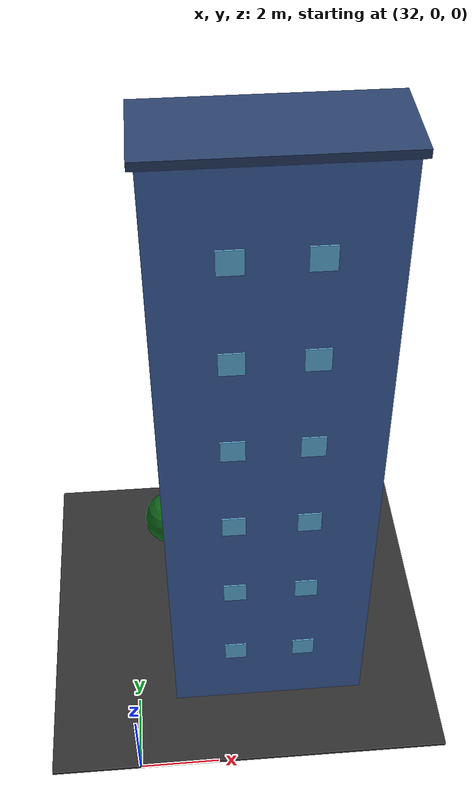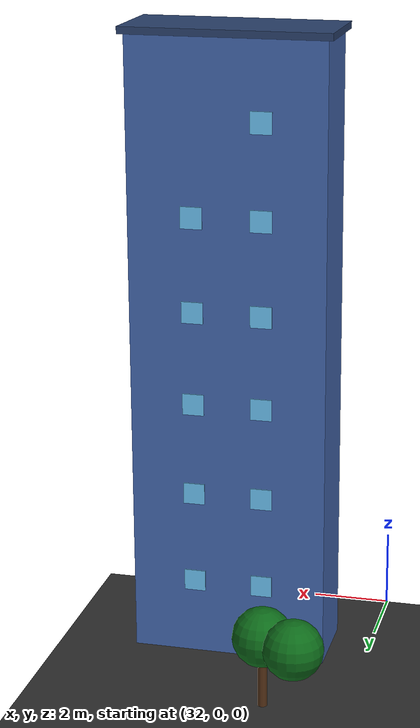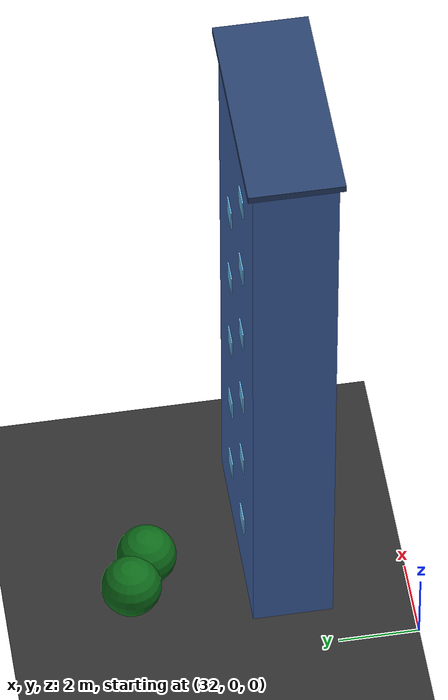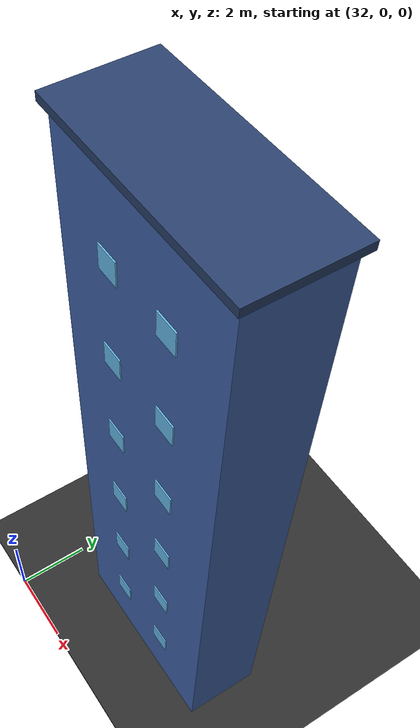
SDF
<sdf version="1.10">
 <world name="city_uav_demo">
  <model name="ground_plane">
   <static>true</static>
   <pose>20.0000 20.0000 -0.0500 0 0 0.0000</pose>
   <link name="link">
    <collision name="collision"><geometry><box><size>40.0000 40.0000 0.1000</size></box></geometry></collision>
    <visual name="visual">
     <geometry><box><size>40.0000 40.0000 0.1000</size></box></geometry>
     <material><ambient>0.18 0.18 0.18 1.0</ambient><diffuse>0.18 0.18 0.18 1.0</diffuse></material>
    </visual>
   </link>
  </model>
  <model name="building_10_body">
   <static>true</static>
   <pose>35.5000 3.0000 8.0000 0 0 0.0000</pose>
   <link name="link">
    <collision name="collision"><geometry><box><size>5.0000 2.0000 16.0000</size></box></geometry></collision>
    <visual name="visual">
     <geometry><box><size>5.0000 2.0000 16.0000</size></box></geometry>
     <material><ambient>0.26 0.40 0.68 1.0</ambient><diffuse>0.26 0.40 0.68 1.0</diffuse></material>
    </visual>
   </link>
  </model>
  <model name="building_10_roof">
   <static>true</static>
   <pose>35.5000 3.0000 16.0900 0 0 0.0000</pose>
   <link name="link">
    <collision name="collision"><geometry><box><size>5.2500 2.2500 0.1800</size></box></geometry></collision>
    <visual name="visual">
     <geometry><box><size>5.2500 2.2500 0.1800</size></box></geometry>
     <material><ambient>0.16 0.25 0.42 1.0</ambient><diffuse>0.16 0.25 0.42 1.0</diffuse></material>
    </visual>
   </link>
  </model>
  <model name="building_10_window_front_0">
   <static>true</static>
   <pose>34.6250 1.9880 2.0000 0 0 0.0000</pose>
   <link name="link">
    <visual name="visual">
     <geometry><box><size>0.5500 0.0350 0.5500</size></box></geometry>
     <material><ambient>0.42 0.76 0.95 1.0</ambient><diffuse>0.42 0.76 0.95 1.0</diffuse></material>
    </visual>
   </link>
  </model>
  <model name="building_10_window_front_1">
   <static>true</static>
   <pose>36.3750 1.9880 2.0000 0 0 0.0000</pose>
   <link name="link">
    <visual name="visual">
     <geometry><box><size>0.5500 0.0350 0.5500</size></box></geometry>
     <material><ambient>0.42 0.76 0.95 1.0</ambient><diffuse>0.42 0.76 0.95 1.0</diffuse></material>
    </visual>
   </link>
  </model>
  <model name="building_10_window_front_2">
   <static>true</static>
   <pose>34.6250 1.9880 4.4000 0 0 0.0000</pose>
   <link name="link">
    <visual name="visual">
     <geometry><box><size>0.5500 0.0350 0.5500</size></box></geometry>
     <material><ambient>0.42 0.76 0.95 1.0</ambient><diffuse>0.42 0.76 0.95 1.0</diffuse></material>
    </visual>
   </link>
  </model>
  <model name="building_10_window_front_3">
   <static>true</static>
   <pose>36.3750 1.9880 4.4000 0 0 0.0000</pose>
   <link name="link">
    <visual name="visual">
     <geometry><box><size>0.5500 0.0350 0.5500</size></box></geometry>
     <material><ambient>0.42 0.76 0.95 1.0</ambient><diffuse>0.42 0.76 0.95 1.0</diffuse></material>
    </visual>
   </link>
  </model>
  <model name="building_10_window_front_4">
   <static>true</static>
   <pose>34.6250 1.9880 6.8000 0 0 0.0000</pose>
   <link name="link">
    <visual name="visual">
     <geometry><box><size>0.5500 0.0350 0.5500</size></box></geometry>
     <material><ambient>0.42 0.76 0.95 1.0</ambient><diffuse>0.42 0.76 0.95 1.0</diffuse></material>
    </visual>
   </link>
  </model>
  <model name="building_10_window_front_5">
   <static>true</static>
   <pose>36.3750 1.9880 6.8000 0 0 0.0000</pose>
   <link name="link">
    <visual name="visual">
     <geometry><box><size>0.5500 0.0350 0.5500</size></box></geometry>
     <material><ambient>0.42 0.76 0.95 1.0</ambient><diffuse>0.42 0.76 0.95 1.0</diffuse></material>
    </visual>
   </link>
  </model>
  <model name="building_10_window_front_6">
   <static>true</static>
   <pose>34.6250 1.9880 9.2000 0 0 0.0000</pose>
   <link name="link">
    <visual name="visual">
     <geometry><box><size>0.5500 0.0350 0.5500</size></box></geometry>
     <material><ambient>0.42 0.76 0.95 1.0</ambient><diffuse>0.42 0.76 0.95 1.0</diffuse></material>
    </visual>
   </link>
  </model>
  <model name="building_10_window_front_7">
   <static>true</static>
   <pose>36.3750 1.9880 9.2000 0 0 0.0000</pose>
   <link name="link">
    <visual name="visual">
     <geometry><box><size>0.5500 0.0350 0.5500</size></box></geometry>
     <material><ambient>0.42 0.76 0.95 1.0</ambient><diffuse>0.42 0.76 0.95 1.0</diffuse></material>
    </visual>
   </link>
  </model>
  <model name="building_10_window_front_8">
   <static>true</static>
   <pose>34.6250 1.9880 11.6000 0 0 0.0000</pose>
   <link name="link">
    <visual name="visual">
     <geometry><box><size>0.5500 0.0350 0.5500</size></box></geometry>
     <material><ambient>0.42 0.76 0.95 1.0</ambient><diffuse>0.42 0.76 0.95 1.0</diffuse></material>
    </visual>
   </link>
  </model>
  <model name="building_10_window_front_9">
   <static>true</static>
   <pose>36.3750 1.9880 11.6000 0 0 0.0000</pose>
   <link name="link">
    <visual name="visual">
     <geometry><box><size>0.5500 0.0350 0.5500</size></box></geometry>
     <material><ambient>0.42 0.76 0.95 1.0</ambient><diffuse>0.42 0.76 0.95 1.0</diffuse></material>
    </visual>
   </link>
  </model>
  <model name="building_10_window_front_10">
   <static>true</static>
   <pose>34.6250 1.9880 14.0000 0 0 0.0000</pose>
   <link name="link">
    <visual name="visual">
     <geometry><box><size>0.5500 0.0350 0.5500</size></box></geometry>
     <material><ambient>0.42 0.76 0.95 1.0</ambient><diffuse>0.42 0.76 0.95 1.0</diffuse></material>
    </visual>
   </link>
  </model>
  <model name="building_10_window_front_11">
   <static>true</static>
   <pose>36.3750 1.9880 14.0000 0 0 0.0000</pose>
   <link name="link">
    <visual name="visual">
     <geometry><box><size>0.5500 0.0350 0.5500</size></box></geometry>
     <material><ambient>0.42 0.76 0.95 1.0</ambient><diffuse>0.42 0.76 0.95 1.0</diffuse></material>
    </visual>
   </link>
  </model>
  <model name="building_10_window_back_0">
   <static>true</static>
   <pose>34.6250 4.0120 2.0000 0 0 0.0000</pose>
   <link name="link">
    <visual name="visual">
     <geometry><box><size>0.5500 0.0350 0.5500</size></box></geometry>
     <material><ambient>0.42 0.76 0.95 1.0</ambient><diffuse>0.42 0.76 0.95 1.0</diffuse></material>
    </visual>
   </link>
  </model>
  <model name="building_10_window_back_1">
   <static>true</static>
   <pose>36.3750 4.0120 2.0000 0 0 0.0000</pose>
   <link name="link">
    <visual name="visual">
     <geometry><box><size>0.5500 0.0350 0.5500</size></box></geometry>
     <material><ambient>0.42 0.76 0.95 1.0</ambient><diffuse>0.42 0.76 0.95 1.0</diffuse></material>
    </visual>
   </link>
  </model>
  <model name="building_10_window_back_2">
   <static>true</static>
   <pose>34.6250 4.0120 4.4000 0 0 0.0000</pose>
   <link name="link">
    <visual name="visual">
     <geometry><box><size>0.5500 0.0350 0.5500</size></box></geometry>
     <material><ambient>0.42 0.76 0.95 1.0</ambient><diffuse>0.42 0.76 0.95 1.0</diffuse></material>
    </visual>
   </link>
  </model>
  <model name="building_10_window_back_3">
   <static>true</static>
   <pose>36.3750 4.0120 4.4000 0 0 0.0000</pose>
   <link name="link">
    <visual name="visual">
     <geometry><box><size>0.5500 0.0350 0.5500</size></box></geometry>
     <material><ambient>0.42 0.76 0.95 1.0</ambient><diffuse>0.42 0.76 0.95 1.0</diffuse></material>
    </visual>
   </link>
  </model>
  <model name="building_10_window_back_4">
   <static>true</static>
   <pose>34.6250 4.0120 6.8000 0 0 0.0000</pose>
   <link name="link">
    <visual name="visual">
     <geometry><box><size>0.5500 0.0350 0.5500</size></box></geometry>
     <material><ambient>0.42 0.76 0.95 1.0</ambient><diffuse>0.42 0.76 0.95 1.0</diffuse></material>
    </visual>
   </link>
  </model>
  <model name="building_10_window_back_5">
   <static>true</static>
   <pose>36.3750 4.0120 6.8000 0 0 0.0000</pose>
   <link name="link">
    <visual name="visual">
     <geometry><box><size>0.5500 0.0350 0.5500</size></box></geometry>
     <material><ambient>0.42 0.76 0.95 1.0</ambient><diffuse>0.42 0.76 0.95 1.0</diffuse></material>
    </visual>
   </link>
  </model>
  <model name="building_10_window_back_6">
   <static>true</static>
   <pose>34.6250 4.0120 9.2000 0 0 0.0000</pose>
   <link name="link">
    <visual name="visual">
     <geometry><box><size>0.5500 0.0350 0.5500</size></box></geometry>
     <material><ambient>0.42 0.76 0.95 1.0</ambient><diffuse>0.42 0.76 0.95 1.0</diffuse></material>
    </visual>
   </link>
  </model>
  <model name="building_10_window_back_7">
   <static>true</static>
   <pose>36.3750 4.0120 9.2000 0 0 0.0000</pose>
   <link name="link">
    <visual name="visual">
     <geometry><box><size>0.5500 0.0350 0.5500</size></box></geometry>
     <material><ambient>0.42 0.76 0.95 1.0</ambient><diffuse>0.42 0.76 0.95 1.0</diffuse></material>
    </visual>
   </link>
  </model>
  <model name="building_10_window_back_8">
   <static>true</static>
   <pose>34.6250 4.0120 11.6000 0 0 0.0000</pose>
   <link name="link">
    <visual name="visual">
     <geometry><box><size>0.5500 0.0350 0.5500</size></box></geometry>
     <material><ambient>0.42 0.76 0.95 1.0</ambient><diffuse>0.42 0.76 0.95 1.0</diffuse></material>
    </visual>
   </link>
  </model>
  <model name="building_10_window_back_9">
   <static>true</static>
   <pose>36.3750 4.0120 11.6000 0 0 0.0000</pose>
   <link name="link">
    <visual name="visual">
     <geometry><box><size>0.5500 0.0350 0.5500</size></box></geometry>
     <material><ambient>0.42 0.76 0.95 1.0</ambient><diffuse>0.42 0.76 0.95 1.0</diffuse></material>
    </visual>
   </link>
  </model>
  <model name="building_10_window_back_10">
   <static>true</static>
   <pose>34.6250 4.0120 14.0000 0 0 0.0000</pose>
   <link name="link">
    <visual name="visual">
     <geometry><box><size>0.5500 0.0350 0.5500</size></box></geometry>
     <material><ambient>0.42 0.76 0.95 1.0</ambient><diffuse>0.42 0.76 0.95 1.0</diffuse></material>
    </visual>
   </link>
  </model>
  <model name="tree_6_crown">
   <static>true</static>
   <pose>33.1200 7.0000 1.8500 0 0 0</pose>
   <link name="link">
    <visual name="visual">
     <geometry><sphere><radius>0.7500</radius></sphere></geometry>
     <material><ambient>0.05 0.42 0.10 1.0</ambient><diffuse>0.05 0.42 0.10 1.0</diffuse></material>
    </visual>
   </link>
  </model>
  <model name="tree_11_trunk">
   <static>true</static>
   <pose>34.0000 6.5000 0.7500 0.0000 0.0000 0.0000</pose>
   <link name="link">
    <visual name="visual">
     <geometry><cylinder><radius>0.1200</radius><length>1.5000</length></cylinder></geometry>
     <material><ambient>0.32 0.18 0.08 1.0</ambient><diffuse>0.32 0.18 0.08 1.0</diffuse></material>
    </visual>
   </link>
  </model>
  <model name="tree_11_crown">
   <static>true</static>
   <pose>34.0000 6.5000 1.8500 0 0 0</pose>
   <link name="link">
    <visual name="visual">
     <geometry><sphere><radius>0.7500</radius></sphere></geometry>
     <material><ambient>0.05 0.42 0.10 1.0</ambient><diffuse>0.05 0.42 0.10 1.0</diffuse></material>
    </visual>
   </link>
  </model>
 </world>
</sdf>
